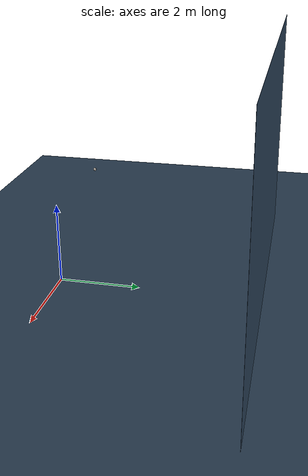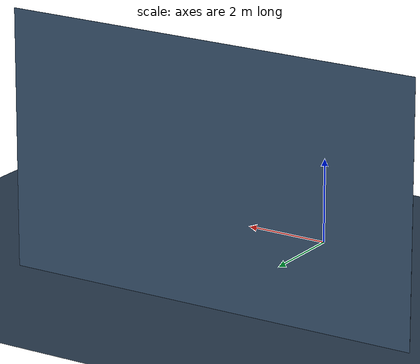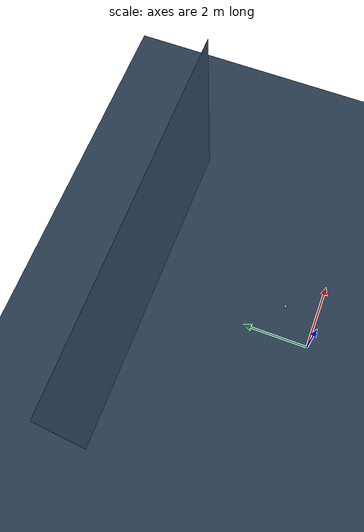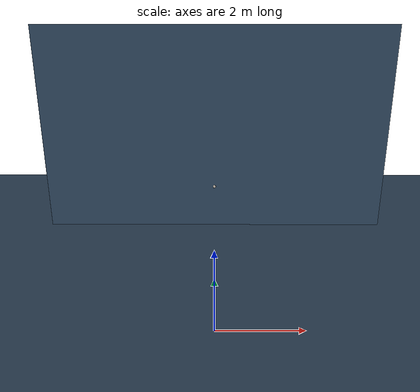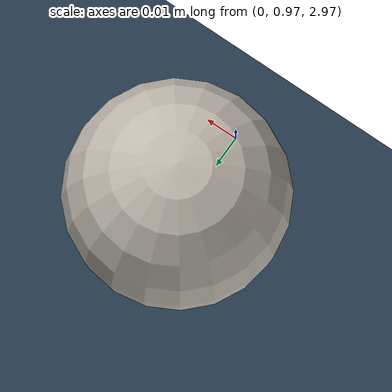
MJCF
<mujoco>
    <statistic extent="2" meansize=".05"/>
    <option timestep="0.001" solver="Newton" iterations="50" tolerance="1e-5" jacobian="sparse" cone="pyramidal" gravity='0 0 -9.81'/>

    <visual>
        <rgba haze="0.15 0.25 0.35 1"/>
        <quality shadowsize="2048"/>
        <map stiffness="700" shadowscale="0.5" fogstart="10" fogend="15" zfar="40" haze="0.3"/>
        <headlight ambient=".2 .2 .2" diffuse=".8 .8 .8" specular="0.1 0.1 0.1"/>
    </visual>

    <asset>
        <texture name="skybox" type="skybox" builtin="gradient" rgb1=".1 .1 .30" rgb2="0 0 0" width="800" height="800" mark="random" markrgb="1 1 1"/>

        <texture name="texplane" type="2d" builtin="checker" rgb1=".2 .3 .4" rgb2=".1 0.15 0.2"
            width="512" height="512" mark="cross" markrgb=".8 .8 .8"/>
        <material name="matplane" reflectance="0.0" texture="texplane" texrepeat="1 1" texuniform="true"/>
    </asset>

	<include file="../../components/tennis/tennis_ball_asset.xml"/>
	<include file="../../components/tennis/tennis_wall_asset.xml"/>

    <worldbody>
        <geom name="ground" type="plane" size="0 0 1" pos="0 0 0" quat="1 0 0 0" material="matplane" condim="6"/>
        <light mode='trackcom' pos='0 0 5' dir='0 0 -1'/>
        <light directional='true' pos='0 0 3' dir='0 0 -1' diffuse='0.2 0.2 0.2' specular='0 0 0'/>

        <geom name="wall" type="plane" pos="0 5 3" size="5 3 10" material="tennis_wall_background" zaxis="0 -1 0"/>

		<body name="tennis_ball_1" pos="0 1 3" euler="0 0 0">
			<include file="../../components/tennis/tennis_ball_chain.xml"/>
		</body>

    </worldbody>

</mujoco>

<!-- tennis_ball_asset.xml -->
<mujocoinclude>
    <default>
        <default class="bouncy">
            <geom condim="6" priority="1" friction="0.5 0.001 0.001" solref="-5000 -5" solimp="0.5 0.9 0.01"/>
        </default>
    </default>
	<asset>
        <texture name="tennis_ball" file="../../components/texture/tennis_ball.png" gridsize="3 4" gridlayout=".U..LFRB.D.."/>
        <material name="tennis_ball" texture="tennis_ball"/>
    </asset>
</mujocoinclude>

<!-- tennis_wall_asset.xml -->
<mujocoinclude>
    <asset>
        <texture name="tennis_wall_background" builtin="flat" type="2d" mark="random" markrgb="1 1 1" width="800" height="800" rgb1=".2 .3 .4"/>
        <material name="tennis_wall_background" texture="tennis_wall_background" texrepeat="1 1" texuniform="true"/>
    </asset>
</mujocoinclude>

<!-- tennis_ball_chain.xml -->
<mujocoinclude>
      <freejoint name="ball_root"/>
      <geom name="tennis_ball" class="bouncy" size="0.0335" material="tennis_ball" mass="0.0577"/>
      <light name="ball_light" pos="0 0 4" mode="trackcom"/>
</mujocoinclude>
